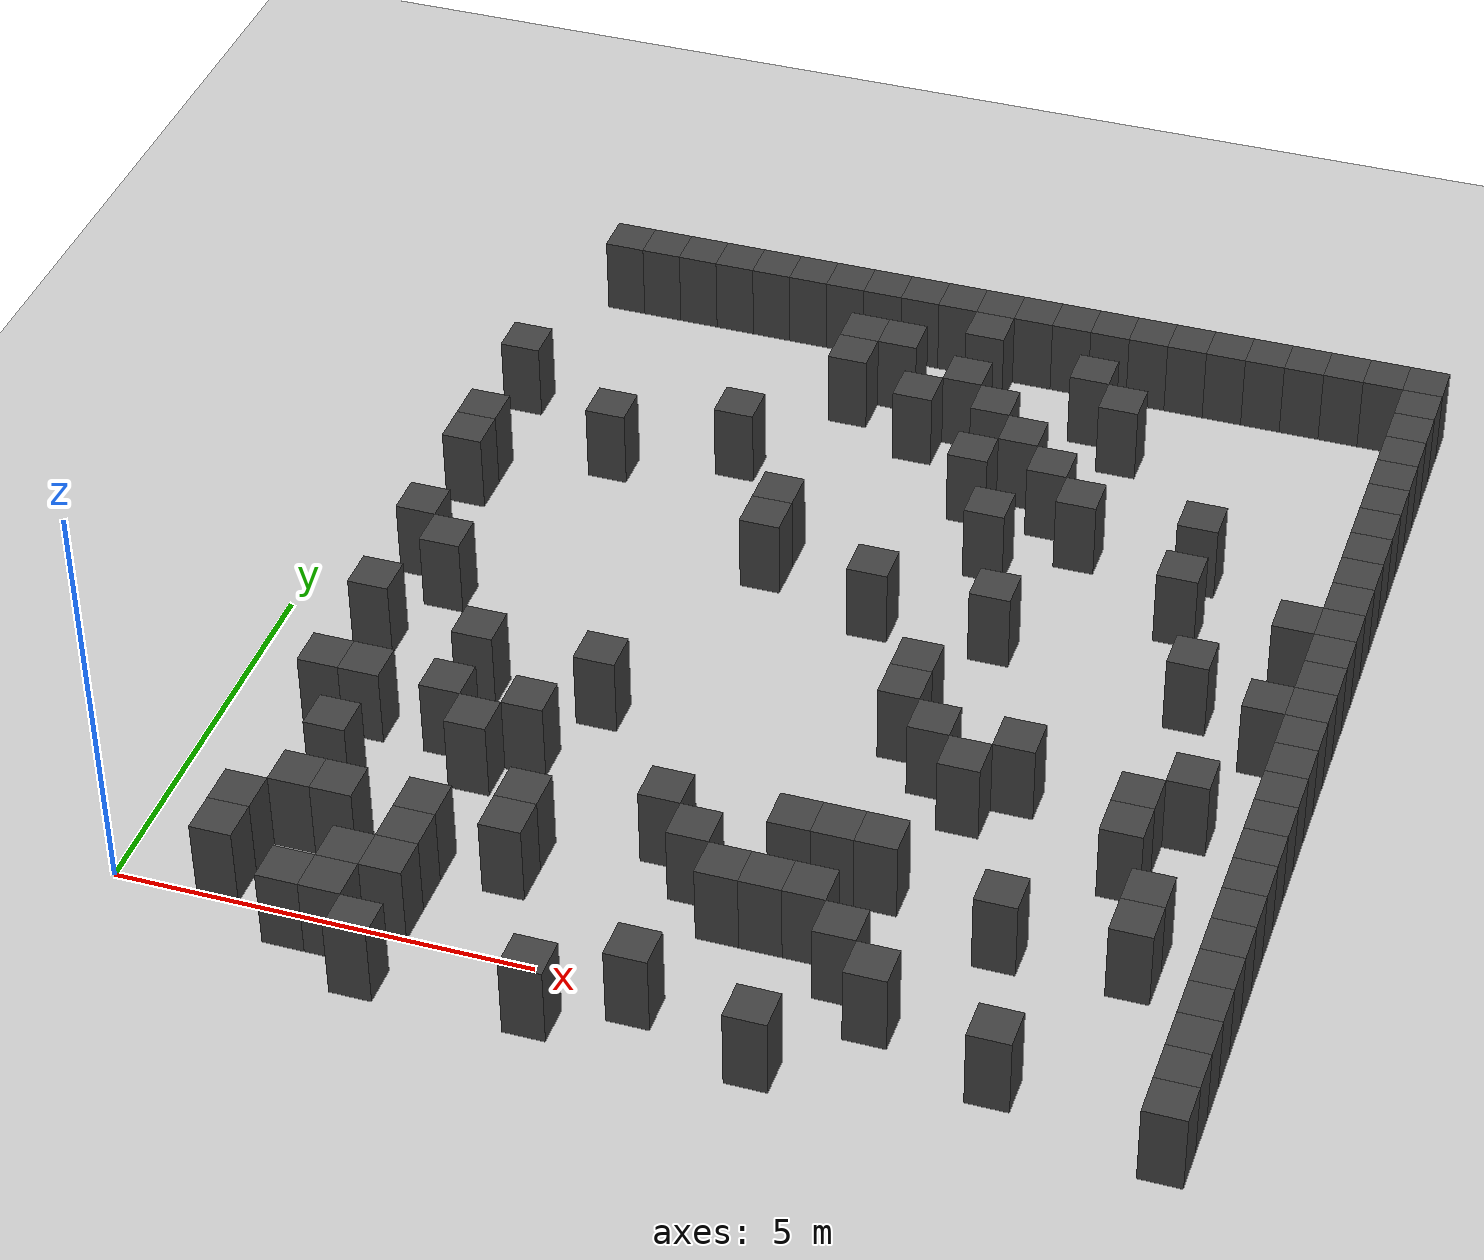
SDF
<sdf version="1.7">
 <world name="map_2522">
  <model name="ground_plane">
   <static>true</static>
   <link name="link">
    <collision name="collision">
     <geometry><plane><normal>0 0 1</normal><size>200 200</size></plane></geometry>
    </collision>
    <visual name="visual">
     <geometry><plane><normal>0 0 1</normal><size>200 200</size></plane></geometry>
     <material><ambient>0.8 0.8 0.8 1</ambient><diffuse>0.8 0.8 0.8 1</diffuse></material>
    </visual>
   </link>
  </model>
  <model name="maze_environment">
   <static>true</static>
   <link name="wall_28">
    <pose>1.750 12.250 0.500 0 0 0</pose>
    <collision name="col"><geometry><box><size>0.5 0.5 1.0</size></box></geometry></collision>
    <visual name="vis">
     <geometry><box><size>0.5 0.5 1.0</size></box></geometry>
     <material><ambient>0.15 0.15 0.15 1</ambient><diffuse>0.25 0.25 0.25 1</diffuse></material>
    </visual>
   </link>
   <link name="wall_29">
    <pose>2.250 12.250 0.500 0 0 0</pose>
    <collision name="col"><geometry><box><size>0.5 0.5 1.0</size></box></geometry></collision>
    <visual name="vis">
     <geometry><box><size>0.5 0.5 1.0</size></box></geometry>
     <material><ambient>0.15 0.15 0.15 1</ambient><diffuse>0.25 0.25 0.25 1</diffuse></material>
    </visual>
   </link>
   <link name="wall_30">
    <pose>2.750 12.250 0.500 0 0 0</pose>
    <collision name="col"><geometry><box><size>0.5 0.5 1.0</size></box></geometry></collision>
    <visual name="vis">
     <geometry><box><size>0.5 0.5 1.0</size></box></geometry>
     <material><ambient>0.15 0.15 0.15 1</ambient><diffuse>0.25 0.25 0.25 1</diffuse></material>
    </visual>
   </link>
   <link name="wall_31">
    <pose>3.250 12.250 0.500 0 0 0</pose>
    <collision name="col"><geometry><box><size>0.5 0.5 1.0</size></box></geometry></collision>
    <visual name="vis">
     <geometry><box><size>0.5 0.5 1.0</size></box></geometry>
     <material><ambient>0.15 0.15 0.15 1</ambient><diffuse>0.25 0.25 0.25 1</diffuse></material>
    </visual>
   </link>
   <link name="wall_32">
    <pose>3.750 12.250 0.500 0 0 0</pose>
    <collision name="col"><geometry><box><size>0.5 0.5 1.0</size></box></geometry></collision>
    <visual name="vis">
     <geometry><box><size>0.5 0.5 1.0</size></box></geometry>
     <material><ambient>0.15 0.15 0.15 1</ambient><diffuse>0.25 0.25 0.25 1</diffuse></material>
    </visual>
   </link>
   <link name="wall_33">
    <pose>4.250 12.250 0.500 0 0 0</pose>
    <collision name="col"><geometry><box><size>0.5 0.5 1.0</size></box></geometry></collision>
    <visual name="vis">
     <geometry><box><size>0.5 0.5 1.0</size></box></geometry>
     <material><ambient>0.15 0.15 0.15 1</ambient><diffuse>0.25 0.25 0.25 1</diffuse></material>
    </visual>
   </link>
   <link name="wall_34">
    <pose>4.750 12.250 0.500 0 0 0</pose>
    <collision name="col"><geometry><box><size>0.5 0.5 1.0</size></box></geometry></collision>
    <visual name="vis">
     <geometry><box><size>0.5 0.5 1.0</size></box></geometry>
     <material><ambient>0.15 0.15 0.15 1</ambient><diffuse>0.25 0.25 0.25 1</diffuse></material>
    </visual>
   </link>
   <link name="wall_35">
    <pose>5.250 12.250 0.500 0 0 0</pose>
    <collision name="col"><geometry><box><size>0.5 0.5 1.0</size></box></geometry></collision>
    <visual name="vis">
     <geometry><box><size>0.5 0.5 1.0</size></box></geometry>
     <material><ambient>0.15 0.15 0.15 1</ambient><diffuse>0.25 0.25 0.25 1</diffuse></material>
    </visual>
   </link>
   <link name="wall_36">
    <pose>5.750 12.250 0.500 0 0 0</pose>
    <collision name="col"><geometry><box><size>0.5 0.5 1.0</size></box></geometry></collision>
    <visual name="vis">
     <geometry><box><size>0.5 0.5 1.0</size></box></geometry>
     <material><ambient>0.15 0.15 0.15 1</ambient><diffuse>0.25 0.25 0.25 1</diffuse></material>
    </visual>
   </link>
   <link name="wall_37">
    <pose>6.250 12.250 0.500 0 0 0</pose>
    <collision name="col"><geometry><box><size>0.5 0.5 1.0</size></box></geometry></collision>
    <visual name="vis">
     <geometry><box><size>0.5 0.5 1.0</size></box></geometry>
     <material><ambient>0.15 0.15 0.15 1</ambient><diffuse>0.25 0.25 0.25 1</diffuse></material>
    </visual>
   </link>
   <link name="wall_38">
    <pose>6.750 12.250 0.500 0 0 0</pose>
    <collision name="col"><geometry><box><size>0.5 0.5 1.0</size></box></geometry></collision>
    <visual name="vis">
     <geometry><box><size>0.5 0.5 1.0</size></box></geometry>
     <material><ambient>0.15 0.15 0.15 1</ambient><diffuse>0.25 0.25 0.25 1</diffuse></material>
    </visual>
   </link>
   <link name="wall_39">
    <pose>7.250 12.250 0.500 0 0 0</pose>
    <collision name="col"><geometry><box><size>0.5 0.5 1.0</size></box></geometry></collision>
    <visual name="vis">
     <geometry><box><size>0.5 0.5 1.0</size></box></geometry>
     <material><ambient>0.15 0.15 0.15 1</ambient><diffuse>0.25 0.25 0.25 1</diffuse></material>
    </visual>
   </link>
   <link name="wall_40">
    <pose>7.750 12.250 0.500 0 0 0</pose>
    <collision name="col"><geometry><box><size>0.5 0.5 1.0</size></box></geometry></collision>
    <visual name="vis">
     <geometry><box><size>0.5 0.5 1.0</size></box></geometry>
     <material><ambient>0.15 0.15 0.15 1</ambient><diffuse>0.25 0.25 0.25 1</diffuse></material>
    </visual>
   </link>
   <link name="wall_41">
    <pose>8.250 12.250 0.500 0 0 0</pose>
    <collision name="col"><geometry><box><size>0.5 0.5 1.0</size></box></geometry></collision>
    <visual name="vis">
     <geometry><box><size>0.5 0.5 1.0</size></box></geometry>
     <material><ambient>0.15 0.15 0.15 1</ambient><diffuse>0.25 0.25 0.25 1</diffuse></material>
    </visual>
   </link>
   <link name="wall_42">
    <pose>8.750 12.250 0.500 0 0 0</pose>
    <collision name="col"><geometry><box><size>0.5 0.5 1.0</size></box></geometry></collision>
    <visual name="vis">
     <geometry><box><size>0.5 0.5 1.0</size></box></geometry>
     <material><ambient>0.15 0.15 0.15 1</ambient><diffuse>0.25 0.25 0.25 1</diffuse></material>
    </visual>
   </link>
   <link name="wall_43">
    <pose>9.250 12.250 0.500 0 0 0</pose>
    <collision name="col"><geometry><box><size>0.5 0.5 1.0</size></box></geometry></collision>
    <visual name="vis">
     <geometry><box><size>0.5 0.5 1.0</size></box></geometry>
     <material><ambient>0.15 0.15 0.15 1</ambient><diffuse>0.25 0.25 0.25 1</diffuse></material>
    </visual>
   </link>
   <link name="wall_44">
    <pose>9.750 12.250 0.500 0 0 0</pose>
    <collision name="col"><geometry><box><size>0.5 0.5 1.0</size></box></geometry></collision>
    <visual name="vis">
     <geometry><box><size>0.5 0.5 1.0</size></box></geometry>
     <material><ambient>0.15 0.15 0.15 1</ambient><diffuse>0.25 0.25 0.25 1</diffuse></material>
    </visual>
   </link>
   <link name="wall_45">
    <pose>10.250 12.250 0.500 0 0 0</pose>
    <collision name="col"><geometry><box><size>0.5 0.5 1.0</size></box></geometry></collision>
    <visual name="vis">
     <geometry><box><size>0.5 0.5 1.0</size></box></geometry>
     <material><ambient>0.15 0.15 0.15 1</ambient><diffuse>0.25 0.25 0.25 1</diffuse></material>
    </visual>
   </link>
   <link name="wall_46">
    <pose>10.750 12.250 0.500 0 0 0</pose>
    <collision name="col"><geometry><box><size>0.5 0.5 1.0</size></box></geometry></collision>
    <visual name="vis">
     <geometry><box><size>0.5 0.5 1.0</size></box></geometry>
     <material><ambient>0.15 0.15 0.15 1</ambient><diffuse>0.25 0.25 0.25 1</diffuse></material>
    </visual>
   </link>
   <link name="wall_47">
    <pose>11.250 12.250 0.500 0 0 0</pose>
    <collision name="col"><geometry><box><size>0.5 0.5 1.0</size></box></geometry></collision>
    <visual name="vis">
     <geometry><box><size>0.5 0.5 1.0</size></box></geometry>
     <material><ambient>0.15 0.15 0.15 1</ambient><diffuse>0.25 0.25 0.25 1</diffuse></material>
    </visual>
   </link>
   <link name="wall_48">
    <pose>11.750 12.250 0.500 0 0 0</pose>
    <collision name="col"><geometry><box><size>0.5 0.5 1.0</size></box></geometry></collision>
    <visual name="vis">
     <geometry><box><size>0.5 0.5 1.0</size></box></geometry>
     <material><ambient>0.15 0.15 0.15 1</ambient><diffuse>0.25 0.25 0.25 1</diffuse></material>
    </visual>
   </link>
   <link name="wall_49">
    <pose>12.250 12.250 0.500 0 0 0</pose>
    <collision name="col"><geometry><box><size>0.5 0.5 1.0</size></box></geometry></collision>
    <visual name="vis">
     <geometry><box><size>0.5 0.5 1.0</size></box></geometry>
     <material><ambient>0.15 0.15 0.15 1</ambient><diffuse>0.25 0.25 0.25 1</diffuse></material>
    </visual>
   </link>
   <link name="wall_53">
    <pose>6.750 11.750 0.500 0 0 0</pose>
    <collision name="col"><geometry><box><size>0.5 0.5 1.0</size></box></geometry></collision>
    <visual name="vis">
     <geometry><box><size>0.5 0.5 1.0</size></box></geometry>
     <material><ambient>0.15 0.15 0.15 1</ambient><diffuse>0.25 0.25 0.25 1</diffuse></material>
    </visual>
   </link>
   <link name="wall_54">
    <pose>12.250 11.750 0.500 0 0 0</pose>
    <collision name="col"><geometry><box><size>0.5 0.5 1.0</size></box></geometry></collision>
    <visual name="vis">
     <geometry><box><size>0.5 0.5 1.0</size></box></geometry>
     <material><ambient>0.15 0.15 0.15 1</ambient><diffuse>0.25 0.25 0.25 1</diffuse></material>
    </visual>
   </link>
   <link name="wall_59">
    <pose>5.250 11.250 0.500 0 0 0</pose>
    <collision name="col"><geometry><box><size>0.5 0.5 1.0</size></box></geometry></collision>
    <visual name="vis">
     <geometry><box><size>0.5 0.5 1.0</size></box></geometry>
     <material><ambient>0.15 0.15 0.15 1</ambient><diffuse>0.25 0.25 0.25 1</diffuse></material>
    </visual>
   </link>
   <link name="wall_60">
    <pose>5.750 11.250 0.500 0 0 0</pose>
    <collision name="col"><geometry><box><size>0.5 0.5 1.0</size></box></geometry></collision>
    <visual name="vis">
     <geometry><box><size>0.5 0.5 1.0</size></box></geometry>
     <material><ambient>0.15 0.15 0.15 1</ambient><diffuse>0.25 0.25 0.25 1</diffuse></material>
    </visual>
   </link>
   <link name="wall_61">
    <pose>8.250 11.250 0.500 0 0 0</pose>
    <collision name="col"><geometry><box><size>0.5 0.5 1.0</size></box></geometry></collision>
    <visual name="vis">
     <geometry><box><size>0.5 0.5 1.0</size></box></geometry>
     <material><ambient>0.15 0.15 0.15 1</ambient><diffuse>0.25 0.25 0.25 1</diffuse></material>
    </visual>
   </link>
   <link name="wall_62">
    <pose>12.250 11.250 0.500 0 0 0</pose>
    <collision name="col"><geometry><box><size>0.5 0.5 1.0</size></box></geometry></collision>
    <visual name="vis">
     <geometry><box><size>0.5 0.5 1.0</size></box></geometry>
     <material><ambient>0.15 0.15 0.15 1</ambient><diffuse>0.25 0.25 0.25 1</diffuse></material>
    </visual>
   </link>
   <link name="wall_71">
    <pose>5.250 10.750 0.500 0 0 0</pose>
    <collision name="col"><geometry><box><size>0.5 0.5 1.0</size></box></geometry></collision>
    <visual name="vis">
     <geometry><box><size>0.5 0.5 1.0</size></box></geometry>
     <material><ambient>0.15 0.15 0.15 1</ambient><diffuse>0.25 0.25 0.25 1</diffuse></material>
    </visual>
   </link>
   <link name="wall_72">
    <pose>6.750 10.750 0.500 0 0 0</pose>
    <collision name="col"><geometry><box><size>0.5 0.5 1.0</size></box></geometry></collision>
    <visual name="vis">
     <geometry><box><size>0.5 0.5 1.0</size></box></geometry>
     <material><ambient>0.15 0.15 0.15 1</ambient><diffuse>0.25 0.25 0.25 1</diffuse></material>
    </visual>
   </link>
   <link name="wall_73">
    <pose>8.750 10.750 0.500 0 0 0</pose>
    <collision name="col"><geometry><box><size>0.5 0.5 1.0</size></box></geometry></collision>
    <visual name="vis">
     <geometry><box><size>0.5 0.5 1.0</size></box></geometry>
     <material><ambient>0.15 0.15 0.15 1</ambient><diffuse>0.25 0.25 0.25 1</diffuse></material>
    </visual>
   </link>
   <link name="wall_74">
    <pose>12.250 10.750 0.500 0 0 0</pose>
    <collision name="col"><geometry><box><size>0.5 0.5 1.0</size></box></geometry></collision>
    <visual name="vis">
     <geometry><box><size>0.5 0.5 1.0</size></box></geometry>
     <material><ambient>0.15 0.15 0.15 1</ambient><diffuse>0.25 0.25 0.25 1</diffuse></material>
    </visual>
   </link>
   <link name="wall_80">
    <pose>6.250 10.250 0.500 0 0 0</pose>
    <collision name="col"><geometry><box><size>0.5 0.5 1.0</size></box></geometry></collision>
    <visual name="vis">
     <geometry><box><size>0.5 0.5 1.0</size></box></geometry>
     <material><ambient>0.15 0.15 0.15 1</ambient><diffuse>0.25 0.25 0.25 1</diffuse></material>
    </visual>
   </link>
   <link name="wall_81">
    <pose>7.250 10.250 0.500 0 0 0</pose>
    <collision name="col"><geometry><box><size>0.5 0.5 1.0</size></box></geometry></collision>
    <visual name="vis">
     <geometry><box><size>0.5 0.5 1.0</size></box></geometry>
     <material><ambient>0.15 0.15 0.15 1</ambient><diffuse>0.25 0.25 0.25 1</diffuse></material>
    </visual>
   </link>
   <link name="wall_82">
    <pose>12.250 10.250 0.500 0 0 0</pose>
    <collision name="col"><geometry><box><size>0.5 0.5 1.0</size></box></geometry></collision>
    <visual name="vis">
     <geometry><box><size>0.5 0.5 1.0</size></box></geometry>
     <material><ambient>0.15 0.15 0.15 1</ambient><diffuse>0.25 0.25 0.25 1</diffuse></material>
    </visual>
   </link>
   <link name="wall_88">
    <pose>1.250 9.750 0.500 0 0 0</pose>
    <collision name="col"><geometry><box><size>0.5 0.5 1.0</size></box></geometry></collision>
    <visual name="vis">
     <geometry><box><size>0.5 0.5 1.0</size></box></geometry>
     <material><ambient>0.15 0.15 0.15 1</ambient><diffuse>0.25 0.25 0.25 1</diffuse></material>
    </visual>
   </link>
   <link name="wall_89">
    <pose>7.750 9.750 0.500 0 0 0</pose>
    <collision name="col"><geometry><box><size>0.5 0.5 1.0</size></box></geometry></collision>
    <visual name="vis">
     <geometry><box><size>0.5 0.5 1.0</size></box></geometry>
     <material><ambient>0.15 0.15 0.15 1</ambient><diffuse>0.25 0.25 0.25 1</diffuse></material>
    </visual>
   </link>
   <link name="wall_90">
    <pose>12.250 9.750 0.500 0 0 0</pose>
    <collision name="col"><geometry><box><size>0.5 0.5 1.0</size></box></geometry></collision>
    <visual name="vis">
     <geometry><box><size>0.5 0.5 1.0</size></box></geometry>
     <material><ambient>0.15 0.15 0.15 1</ambient><diffuse>0.25 0.25 0.25 1</diffuse></material>
    </visual>
   </link>
   <link name="wall_93">
    <pose>4.250 9.250 0.500 0 0 0</pose>
    <collision name="col"><geometry><box><size>0.5 0.5 1.0</size></box></geometry></collision>
    <visual name="vis">
     <geometry><box><size>0.5 0.5 1.0</size></box></geometry>
     <material><ambient>0.15 0.15 0.15 1</ambient><diffuse>0.25 0.25 0.25 1</diffuse></material>
    </visual>
   </link>
   <link name="wall_94">
    <pose>7.250 9.250 0.500 0 0 0</pose>
    <collision name="col"><geometry><box><size>0.5 0.5 1.0</size></box></geometry></collision>
    <visual name="vis">
     <geometry><box><size>0.5 0.5 1.0</size></box></geometry>
     <material><ambient>0.15 0.15 0.15 1</ambient><diffuse>0.25 0.25 0.25 1</diffuse></material>
    </visual>
   </link>
   <link name="wall_95">
    <pose>8.250 9.250 0.500 0 0 0</pose>
    <collision name="col"><geometry><box><size>0.5 0.5 1.0</size></box></geometry></collision>
    <visual name="vis">
     <geometry><box><size>0.5 0.5 1.0</size></box></geometry>
     <material><ambient>0.15 0.15 0.15 1</ambient><diffuse>0.25 0.25 0.25 1</diffuse></material>
    </visual>
   </link>
   <link name="wall_96">
    <pose>12.250 9.250 0.500 0 0 0</pose>
    <collision name="col"><geometry><box><size>0.5 0.5 1.0</size></box></geometry></collision>
    <visual name="vis">
     <geometry><box><size>0.5 0.5 1.0</size></box></geometry>
     <material><ambient>0.15 0.15 0.15 1</ambient><diffuse>0.25 0.25 0.25 1</diffuse></material>
    </visual>
   </link>
   <link name="wall_100">
    <pose>2.750 8.750 0.500 0 0 0</pose>
    <collision name="col"><geometry><box><size>0.5 0.5 1.0</size></box></geometry></collision>
    <visual name="vis">
     <geometry><box><size>0.5 0.5 1.0</size></box></geometry>
     <material><ambient>0.15 0.15 0.15 1</ambient><diffuse>0.25 0.25 0.25 1</diffuse></material>
    </visual>
   </link>
   <link name="wall_101">
    <pose>8.750 8.750 0.500 0 0 0</pose>
    <collision name="col"><geometry><box><size>0.5 0.5 1.0</size></box></geometry></collision>
    <visual name="vis">
     <geometry><box><size>0.5 0.5 1.0</size></box></geometry>
     <material><ambient>0.15 0.15 0.15 1</ambient><diffuse>0.25 0.25 0.25 1</diffuse></material>
    </visual>
   </link>
   <link name="wall_102">
    <pose>10.250 8.750 0.500 0 0 0</pose>
    <collision name="col"><geometry><box><size>0.5 0.5 1.0</size></box></geometry></collision>
    <visual name="vis">
     <geometry><box><size>0.5 0.5 1.0</size></box></geometry>
     <material><ambient>0.15 0.15 0.15 1</ambient><diffuse>0.25 0.25 0.25 1</diffuse></material>
    </visual>
   </link>
   <link name="wall_103">
    <pose>12.250 8.750 0.500 0 0 0</pose>
    <collision name="col"><geometry><box><size>0.5 0.5 1.0</size></box></geometry></collision>
    <visual name="vis">
     <geometry><box><size>0.5 0.5 1.0</size></box></geometry>
     <material><ambient>0.15 0.15 0.15 1</ambient><diffuse>0.25 0.25 0.25 1</diffuse></material>
    </visual>
   </link>
   <link name="wall_106">
    <pose>1.250 8.250 0.500 0 0 0</pose>
    <collision name="col"><geometry><box><size>0.5 0.5 1.0</size></box></geometry></collision>
    <visual name="vis">
     <geometry><box><size>0.5 0.5 1.0</size></box></geometry>
     <material><ambient>0.15 0.15 0.15 1</ambient><diffuse>0.25 0.25 0.25 1</diffuse></material>
    </visual>
   </link>
   <link name="wall_107">
    <pose>7.750 8.250 0.500 0 0 0</pose>
    <collision name="col"><geometry><box><size>0.5 0.5 1.0</size></box></geometry></collision>
    <visual name="vis">
     <geometry><box><size>0.5 0.5 1.0</size></box></geometry>
     <material><ambient>0.15 0.15 0.15 1</ambient><diffuse>0.25 0.25 0.25 1</diffuse></material>
    </visual>
   </link>
   <link name="wall_108">
    <pose>12.250 8.250 0.500 0 0 0</pose>
    <collision name="col"><geometry><box><size>0.5 0.5 1.0</size></box></geometry></collision>
    <visual name="vis">
     <geometry><box><size>0.5 0.5 1.0</size></box></geometry>
     <material><ambient>0.15 0.15 0.15 1</ambient><diffuse>0.25 0.25 0.25 1</diffuse></material>
    </visual>
   </link>
   <link name="wall_111">
    <pose>1.250 7.750 0.500 0 0 0</pose>
    <collision name="col"><geometry><box><size>0.5 0.5 1.0</size></box></geometry></collision>
    <visual name="vis">
     <geometry><box><size>0.5 0.5 1.0</size></box></geometry>
     <material><ambient>0.15 0.15 0.15 1</ambient><diffuse>0.25 0.25 0.25 1</diffuse></material>
    </visual>
   </link>
   <link name="wall_112">
    <pose>5.250 7.750 0.500 0 0 0</pose>
    <collision name="col"><geometry><box><size>0.5 0.5 1.0</size></box></geometry></collision>
    <visual name="vis">
     <geometry><box><size>0.5 0.5 1.0</size></box></geometry>
     <material><ambient>0.15 0.15 0.15 1</ambient><diffuse>0.25 0.25 0.25 1</diffuse></material>
    </visual>
   </link>
   <link name="wall_113">
    <pose>10.250 7.750 0.500 0 0 0</pose>
    <collision name="col"><geometry><box><size>0.5 0.5 1.0</size></box></geometry></collision>
    <visual name="vis">
     <geometry><box><size>0.5 0.5 1.0</size></box></geometry>
     <material><ambient>0.15 0.15 0.15 1</ambient><diffuse>0.25 0.25 0.25 1</diffuse></material>
    </visual>
   </link>
   <link name="wall_114">
    <pose>12.250 7.750 0.500 0 0 0</pose>
    <collision name="col"><geometry><box><size>0.5 0.5 1.0</size></box></geometry></collision>
    <visual name="vis">
     <geometry><box><size>0.5 0.5 1.0</size></box></geometry>
     <material><ambient>0.15 0.15 0.15 1</ambient><diffuse>0.25 0.25 0.25 1</diffuse></material>
    </visual>
   </link>
   <link name="wall_120">
    <pose>5.250 7.250 0.500 0 0 0</pose>
    <collision name="col"><geometry><box><size>0.5 0.5 1.0</size></box></geometry></collision>
    <visual name="vis">
     <geometry><box><size>0.5 0.5 1.0</size></box></geometry>
     <material><ambient>0.15 0.15 0.15 1</ambient><diffuse>0.25 0.25 0.25 1</diffuse></material>
    </visual>
   </link>
   <link name="wall_121">
    <pose>11.750 7.250 0.500 0 0 0</pose>
    <collision name="col"><geometry><box><size>0.5 0.5 1.0</size></box></geometry></collision>
    <visual name="vis">
     <geometry><box><size>0.5 0.5 1.0</size></box></geometry>
     <material><ambient>0.15 0.15 0.15 1</ambient><diffuse>0.25 0.25 0.25 1</diffuse></material>
    </visual>
   </link>
   <link name="wall_122">
    <pose>12.250 7.250 0.500 0 0 0</pose>
    <collision name="col"><geometry><box><size>0.5 0.5 1.0</size></box></geometry></collision>
    <visual name="vis">
     <geometry><box><size>0.5 0.5 1.0</size></box></geometry>
     <material><ambient>0.15 0.15 0.15 1</ambient><diffuse>0.25 0.25 0.25 1</diffuse></material>
    </visual>
   </link>
   <link name="wall_126">
    <pose>6.750 6.750 0.500 0 0 0</pose>
    <collision name="col"><geometry><box><size>0.5 0.5 1.0</size></box></geometry></collision>
    <visual name="vis">
     <geometry><box><size>0.5 0.5 1.0</size></box></geometry>
     <material><ambient>0.15 0.15 0.15 1</ambient><diffuse>0.25 0.25 0.25 1</diffuse></material>
    </visual>
   </link>
   <link name="wall_127">
    <pose>8.250 6.750 0.500 0 0 0</pose>
    <collision name="col"><geometry><box><size>0.5 0.5 1.0</size></box></geometry></collision>
    <visual name="vis">
     <geometry><box><size>0.5 0.5 1.0</size></box></geometry>
     <material><ambient>0.15 0.15 0.15 1</ambient><diffuse>0.25 0.25 0.25 1</diffuse></material>
    </visual>
   </link>
   <link name="wall_128">
    <pose>12.250 6.750 0.500 0 0 0</pose>
    <collision name="col"><geometry><box><size>0.5 0.5 1.0</size></box></geometry></collision>
    <visual name="vis">
     <geometry><box><size>0.5 0.5 1.0</size></box></geometry>
     <material><ambient>0.15 0.15 0.15 1</ambient><diffuse>0.25 0.25 0.25 1</diffuse></material>
    </visual>
   </link>
   <link name="wall_132">
    <pose>1.250 6.250 0.500 0 0 0</pose>
    <collision name="col"><geometry><box><size>0.5 0.5 1.0</size></box></geometry></collision>
    <visual name="vis">
     <geometry><box><size>0.5 0.5 1.0</size></box></geometry>
     <material><ambient>0.15 0.15 0.15 1</ambient><diffuse>0.25 0.25 0.25 1</diffuse></material>
    </visual>
   </link>
   <link name="wall_133">
    <pose>10.750 6.250 0.500 0 0 0</pose>
    <collision name="col"><geometry><box><size>0.5 0.5 1.0</size></box></geometry></collision>
    <visual name="vis">
     <geometry><box><size>0.5 0.5 1.0</size></box></geometry>
     <material><ambient>0.15 0.15 0.15 1</ambient><diffuse>0.25 0.25 0.25 1</diffuse></material>
    </visual>
   </link>
   <link name="wall_134">
    <pose>12.250 6.250 0.500 0 0 0</pose>
    <collision name="col"><geometry><box><size>0.5 0.5 1.0</size></box></geometry></collision>
    <visual name="vis">
     <geometry><box><size>0.5 0.5 1.0</size></box></geometry>
     <material><ambient>0.15 0.15 0.15 1</ambient><diffuse>0.25 0.25 0.25 1</diffuse></material>
    </visual>
   </link>
   <link name="wall_139">
    <pose>1.750 5.750 0.500 0 0 0</pose>
    <collision name="col"><geometry><box><size>0.5 0.5 1.0</size></box></geometry></collision>
    <visual name="vis">
     <geometry><box><size>0.5 0.5 1.0</size></box></geometry>
     <material><ambient>0.15 0.15 0.15 1</ambient><diffuse>0.25 0.25 0.25 1</diffuse></material>
    </visual>
   </link>
   <link name="wall_140">
    <pose>11.750 5.750 0.500 0 0 0</pose>
    <collision name="col"><geometry><box><size>0.5 0.5 1.0</size></box></geometry></collision>
    <visual name="vis">
     <geometry><box><size>0.5 0.5 1.0</size></box></geometry>
     <material><ambient>0.15 0.15 0.15 1</ambient><diffuse>0.25 0.25 0.25 1</diffuse></material>
    </visual>
   </link>
   <link name="wall_141">
    <pose>12.250 5.750 0.500 0 0 0</pose>
    <collision name="col"><geometry><box><size>0.5 0.5 1.0</size></box></geometry></collision>
    <visual name="vis">
     <geometry><box><size>0.5 0.5 1.0</size></box></geometry>
     <material><ambient>0.15 0.15 0.15 1</ambient><diffuse>0.25 0.25 0.25 1</diffuse></material>
    </visual>
   </link>
   <link name="wall_146">
    <pose>7.750 5.250 0.500 0 0 0</pose>
    <collision name="col"><geometry><box><size>0.5 0.5 1.0</size></box></geometry></collision>
    <visual name="vis">
     <geometry><box><size>0.5 0.5 1.0</size></box></geometry>
     <material><ambient>0.15 0.15 0.15 1</ambient><diffuse>0.25 0.25 0.25 1</diffuse></material>
    </visual>
   </link>
   <link name="wall_147">
    <pose>12.250 5.250 0.500 0 0 0</pose>
    <collision name="col"><geometry><box><size>0.5 0.5 1.0</size></box></geometry></collision>
    <visual name="vis">
     <geometry><box><size>0.5 0.5 1.0</size></box></geometry>
     <material><ambient>0.15 0.15 0.15 1</ambient><diffuse>0.25 0.25 0.25 1</diffuse></material>
    </visual>
   </link>
   <link name="wall_153">
    <pose>1.250 4.750 0.500 0 0 0</pose>
    <collision name="col"><geometry><box><size>0.5 0.5 1.0</size></box></geometry></collision>
    <visual name="vis">
     <geometry><box><size>0.5 0.5 1.0</size></box></geometry>
     <material><ambient>0.15 0.15 0.15 1</ambient><diffuse>0.25 0.25 0.25 1</diffuse></material>
    </visual>
   </link>
   <link name="wall_154">
    <pose>7.750 4.750 0.500 0 0 0</pose>
    <collision name="col"><geometry><box><size>0.5 0.5 1.0</size></box></geometry></collision>
    <visual name="vis">
     <geometry><box><size>0.5 0.5 1.0</size></box></geometry>
     <material><ambient>0.15 0.15 0.15 1</ambient><diffuse>0.25 0.25 0.25 1</diffuse></material>
    </visual>
   </link>
   <link name="wall_155">
    <pose>12.250 4.750 0.500 0 0 0</pose>
    <collision name="col"><geometry><box><size>0.5 0.5 1.0</size></box></geometry></collision>
    <visual name="vis">
     <geometry><box><size>0.5 0.5 1.0</size></box></geometry>
     <material><ambient>0.15 0.15 0.15 1</ambient><diffuse>0.25 0.25 0.25 1</diffuse></material>
    </visual>
   </link>
   <link name="wall_161">
    <pose>2.750 4.250 0.500 0 0 0</pose>
    <collision name="col"><geometry><box><size>0.5 0.5 1.0</size></box></geometry></collision>
    <visual name="vis">
     <geometry><box><size>0.5 0.5 1.0</size></box></geometry>
     <material><ambient>0.15 0.15 0.15 1</ambient><diffuse>0.25 0.25 0.25 1</diffuse></material>
    </visual>
   </link>
   <link name="wall_162">
    <pose>4.250 4.250 0.500 0 0 0</pose>
    <collision name="col"><geometry><box><size>0.5 0.5 1.0</size></box></geometry></collision>
    <visual name="vis">
     <geometry><box><size>0.5 0.5 1.0</size></box></geometry>
     <material><ambient>0.15 0.15 0.15 1</ambient><diffuse>0.25 0.25 0.25 1</diffuse></material>
    </visual>
   </link>
   <link name="wall_163">
    <pose>8.250 4.250 0.500 0 0 0</pose>
    <collision name="col"><geometry><box><size>0.5 0.5 1.0</size></box></geometry></collision>
    <visual name="vis">
     <geometry><box><size>0.5 0.5 1.0</size></box></geometry>
     <material><ambient>0.15 0.15 0.15 1</ambient><diffuse>0.25 0.25 0.25 1</diffuse></material>
    </visual>
   </link>
   <link name="wall_164">
    <pose>9.250 4.250 0.500 0 0 0</pose>
    <collision name="col"><geometry><box><size>0.5 0.5 1.0</size></box></geometry></collision>
    <visual name="vis">
     <geometry><box><size>0.5 0.5 1.0</size></box></geometry>
     <material><ambient>0.15 0.15 0.15 1</ambient><diffuse>0.25 0.25 0.25 1</diffuse></material>
    </visual>
   </link>
   <link name="wall_165">
    <pose>11.250 4.250 0.500 0 0 0</pose>
    <collision name="col"><geometry><box><size>0.5 0.5 1.0</size></box></geometry></collision>
    <visual name="vis">
     <geometry><box><size>0.5 0.5 1.0</size></box></geometry>
     <material><ambient>0.15 0.15 0.15 1</ambient><diffuse>0.25 0.25 0.25 1</diffuse></material>
    </visual>
   </link>
   <link name="wall_166">
    <pose>12.250 4.250 0.500 0 0 0</pose>
    <collision name="col"><geometry><box><size>0.5 0.5 1.0</size></box></geometry></collision>
    <visual name="vis">
     <geometry><box><size>0.5 0.5 1.0</size></box></geometry>
     <material><ambient>0.15 0.15 0.15 1</ambient><diffuse>0.25 0.25 0.25 1</diffuse></material>
    </visual>
   </link>
   <link name="wall_168">
    <pose>8.750 3.750 0.500 0 0 0</pose>
    <collision name="col"><geometry><box><size>0.5 0.5 1.0</size></box></geometry></collision>
    <visual name="vis">
     <geometry><box><size>0.5 0.5 1.0</size></box></geometry>
     <material><ambient>0.15 0.15 0.15 1</ambient><diffuse>0.25 0.25 0.25 1</diffuse></material>
    </visual>
   </link>
   <link name="wall_169">
    <pose>10.750 3.750 0.500 0 0 0</pose>
    <collision name="col"><geometry><box><size>0.5 0.5 1.0</size></box></geometry></collision>
    <visual name="vis">
     <geometry><box><size>0.5 0.5 1.0</size></box></geometry>
     <material><ambient>0.15 0.15 0.15 1</ambient><diffuse>0.25 0.25 0.25 1</diffuse></material>
    </visual>
   </link>
   <link name="wall_170">
    <pose>12.250 3.750 0.500 0 0 0</pose>
    <collision name="col"><geometry><box><size>0.5 0.5 1.0</size></box></geometry></collision>
    <visual name="vis">
     <geometry><box><size>0.5 0.5 1.0</size></box></geometry>
     <material><ambient>0.15 0.15 0.15 1</ambient><diffuse>0.25 0.25 0.25 1</diffuse></material>
    </visual>
   </link>
   <link name="wall_174">
    <pose>1.250 3.250 0.500 0 0 0</pose>
    <collision name="col"><geometry><box><size>0.5 0.5 1.0</size></box></geometry></collision>
    <visual name="vis">
     <geometry><box><size>0.5 0.5 1.0</size></box></geometry>
     <material><ambient>0.15 0.15 0.15 1</ambient><diffuse>0.25 0.25 0.25 1</diffuse></material>
    </visual>
   </link>
   <link name="wall_175">
    <pose>1.750 3.250 0.500 0 0 0</pose>
    <collision name="col"><geometry><box><size>0.5 0.5 1.0</size></box></geometry></collision>
    <visual name="vis">
     <geometry><box><size>0.5 0.5 1.0</size></box></geometry>
     <material><ambient>0.15 0.15 0.15 1</ambient><diffuse>0.25 0.25 0.25 1</diffuse></material>
    </visual>
   </link>
   <link name="wall_176">
    <pose>2.750 3.250 0.500 0 0 0</pose>
    <collision name="col"><geometry><box><size>0.5 0.5 1.0</size></box></geometry></collision>
    <visual name="vis">
     <geometry><box><size>0.5 0.5 1.0</size></box></geometry>
     <material><ambient>0.15 0.15 0.15 1</ambient><diffuse>0.25 0.25 0.25 1</diffuse></material>
    </visual>
   </link>
   <link name="wall_177">
    <pose>3.750 3.250 0.500 0 0 0</pose>
    <collision name="col"><geometry><box><size>0.5 0.5 1.0</size></box></geometry></collision>
    <visual name="vis">
     <geometry><box><size>0.5 0.5 1.0</size></box></geometry>
     <material><ambient>0.15 0.15 0.15 1</ambient><diffuse>0.25 0.25 0.25 1</diffuse></material>
    </visual>
   </link>
   <link name="wall_178">
    <pose>10.750 3.250 0.500 0 0 0</pose>
    <collision name="col"><geometry><box><size>0.5 0.5 1.0</size></box></geometry></collision>
    <visual name="vis">
     <geometry><box><size>0.5 0.5 1.0</size></box></geometry>
     <material><ambient>0.15 0.15 0.15 1</ambient><diffuse>0.25 0.25 0.25 1</diffuse></material>
    </visual>
   </link>
   <link name="wall_179">
    <pose>12.250 3.250 0.500 0 0 0</pose>
    <collision name="col"><geometry><box><size>0.5 0.5 1.0</size></box></geometry></collision>
    <visual name="vis">
     <geometry><box><size>0.5 0.5 1.0</size></box></geometry>
     <material><ambient>0.15 0.15 0.15 1</ambient><diffuse>0.25 0.25 0.25 1</diffuse></material>
    </visual>
   </link>
   <link name="wall_184">
    <pose>3.250 2.750 0.500 0 0 0</pose>
    <collision name="col"><geometry><box><size>0.5 0.5 1.0</size></box></geometry></collision>
    <visual name="vis">
     <geometry><box><size>0.5 0.5 1.0</size></box></geometry>
     <material><ambient>0.15 0.15 0.15 1</ambient><diffuse>0.25 0.25 0.25 1</diffuse></material>
    </visual>
   </link>
   <link name="wall_185">
    <pose>12.250 2.750 0.500 0 0 0</pose>
    <collision name="col"><geometry><box><size>0.5 0.5 1.0</size></box></geometry></collision>
    <visual name="vis">
     <geometry><box><size>0.5 0.5 1.0</size></box></geometry>
     <material><ambient>0.15 0.15 0.15 1</ambient><diffuse>0.25 0.25 0.25 1</diffuse></material>
    </visual>
   </link>
   <link name="wall_191">
    <pose>1.750 2.250 0.500 0 0 0</pose>
    <collision name="col"><geometry><box><size>0.5 0.5 1.0</size></box></geometry></collision>
    <visual name="vis">
     <geometry><box><size>0.5 0.5 1.0</size></box></geometry>
     <material><ambient>0.15 0.15 0.15 1</ambient><diffuse>0.25 0.25 0.25 1</diffuse></material>
    </visual>
   </link>
   <link name="wall_192">
    <pose>5.750 2.250 0.500 0 0 0</pose>
    <collision name="col"><geometry><box><size>0.5 0.5 1.0</size></box></geometry></collision>
    <visual name="vis">
     <geometry><box><size>0.5 0.5 1.0</size></box></geometry>
     <material><ambient>0.15 0.15 0.15 1</ambient><diffuse>0.25 0.25 0.25 1</diffuse></material>
    </visual>
   </link>
   <link name="wall_193">
    <pose>7.250 2.250 0.500 0 0 0</pose>
    <collision name="col"><geometry><box><size>0.5 0.5 1.0</size></box></geometry></collision>
    <visual name="vis">
     <geometry><box><size>0.5 0.5 1.0</size></box></geometry>
     <material><ambient>0.15 0.15 0.15 1</ambient><diffuse>0.25 0.25 0.25 1</diffuse></material>
    </visual>
   </link>
   <link name="wall_194">
    <pose>7.750 2.250 0.500 0 0 0</pose>
    <collision name="col"><geometry><box><size>0.5 0.5 1.0</size></box></geometry></collision>
    <visual name="vis">
     <geometry><box><size>0.5 0.5 1.0</size></box></geometry>
     <material><ambient>0.15 0.15 0.15 1</ambient><diffuse>0.25 0.25 0.25 1</diffuse></material>
    </visual>
   </link>
   <link name="wall_195">
    <pose>8.250 2.250 0.500 0 0 0</pose>
    <collision name="col"><geometry><box><size>0.5 0.5 1.0</size></box></geometry></collision>
    <visual name="vis">
     <geometry><box><size>0.5 0.5 1.0</size></box></geometry>
     <material><ambient>0.15 0.15 0.15 1</ambient><diffuse>0.25 0.25 0.25 1</diffuse></material>
    </visual>
   </link>
   <link name="wall_196">
    <pose>11.250 2.250 0.500 0 0 0</pose>
    <collision name="col"><geometry><box><size>0.5 0.5 1.0</size></box></geometry></collision>
    <visual name="vis">
     <geometry><box><size>0.5 0.5 1.0</size></box></geometry>
     <material><ambient>0.15 0.15 0.15 1</ambient><diffuse>0.25 0.25 0.25 1</diffuse></material>
    </visual>
   </link>
   <link name="wall_197">
    <pose>12.250 2.250 0.500 0 0 0</pose>
    <collision name="col"><geometry><box><size>0.5 0.5 1.0</size></box></geometry></collision>
    <visual name="vis">
     <geometry><box><size>0.5 0.5 1.0</size></box></geometry>
     <material><ambient>0.15 0.15 0.15 1</ambient><diffuse>0.25 0.25 0.25 1</diffuse></material>
    </visual>
   </link>
   <link name="wall_203">
    <pose>4.250 1.750 0.500 0 0 0</pose>
    <collision name="col"><geometry><box><size>0.5 0.5 1.0</size></box></geometry></collision>
    <visual name="vis">
     <geometry><box><size>0.5 0.5 1.0</size></box></geometry>
     <material><ambient>0.15 0.15 0.15 1</ambient><diffuse>0.25 0.25 0.25 1</diffuse></material>
    </visual>
   </link>
   <link name="wall_204">
    <pose>6.250 1.750 0.500 0 0 0</pose>
    <collision name="col"><geometry><box><size>0.5 0.5 1.0</size></box></geometry></collision>
    <visual name="vis">
     <geometry><box><size>0.5 0.5 1.0</size></box></geometry>
     <material><ambient>0.15 0.15 0.15 1</ambient><diffuse>0.25 0.25 0.25 1</diffuse></material>
    </visual>
   </link>
   <link name="wall_205">
    <pose>9.750 1.750 0.500 0 0 0</pose>
    <collision name="col"><geometry><box><size>0.5 0.5 1.0</size></box></geometry></collision>
    <visual name="vis">
     <geometry><box><size>0.5 0.5 1.0</size></box></geometry>
     <material><ambient>0.15 0.15 0.15 1</ambient><diffuse>0.25 0.25 0.25 1</diffuse></material>
    </visual>
   </link>
   <link name="wall_206">
    <pose>11.250 1.750 0.500 0 0 0</pose>
    <collision name="col"><geometry><box><size>0.5 0.5 1.0</size></box></geometry></collision>
    <visual name="vis">
     <geometry><box><size>0.5 0.5 1.0</size></box></geometry>
     <material><ambient>0.15 0.15 0.15 1</ambient><diffuse>0.25 0.25 0.25 1</diffuse></material>
    </visual>
   </link>
   <link name="wall_207">
    <pose>12.250 1.750 0.500 0 0 0</pose>
    <collision name="col"><geometry><box><size>0.5 0.5 1.0</size></box></geometry></collision>
    <visual name="vis">
     <geometry><box><size>0.5 0.5 1.0</size></box></geometry>
     <material><ambient>0.15 0.15 0.15 1</ambient><diffuse>0.25 0.25 0.25 1</diffuse></material>
    </visual>
   </link>
   <link name="wall_213">
    <pose>1.750 1.250 0.500 0 0 0</pose>
    <collision name="col"><geometry><box><size>0.5 0.5 1.0</size></box></geometry></collision>
    <visual name="vis">
     <geometry><box><size>0.5 0.5 1.0</size></box></geometry>
     <material><ambient>0.15 0.15 0.15 1</ambient><diffuse>0.25 0.25 0.25 1</diffuse></material>
    </visual>
   </link>
   <link name="wall_214">
    <pose>2.250 1.250 0.500 0 0 0</pose>
    <collision name="col"><geometry><box><size>0.5 0.5 1.0</size></box></geometry></collision>
    <visual name="vis">
     <geometry><box><size>0.5 0.5 1.0</size></box></geometry>
     <material><ambient>0.15 0.15 0.15 1</ambient><diffuse>0.25 0.25 0.25 1</diffuse></material>
    </visual>
   </link>
   <link name="wall_215">
    <pose>3.250 1.250 0.500 0 0 0</pose>
    <collision name="col"><geometry><box><size>0.5 0.5 1.0</size></box></geometry></collision>
    <visual name="vis">
     <geometry><box><size>0.5 0.5 1.0</size></box></geometry>
     <material><ambient>0.15 0.15 0.15 1</ambient><diffuse>0.25 0.25 0.25 1</diffuse></material>
    </visual>
   </link>
   <link name="wall_216">
    <pose>4.250 1.250 0.500 0 0 0</pose>
    <collision name="col"><geometry><box><size>0.5 0.5 1.0</size></box></geometry></collision>
    <visual name="vis">
     <geometry><box><size>0.5 0.5 1.0</size></box></geometry>
     <material><ambient>0.15 0.15 0.15 1</ambient><diffuse>0.25 0.25 0.25 1</diffuse></material>
    </visual>
   </link>
   <link name="wall_217">
    <pose>6.750 1.250 0.500 0 0 0</pose>
    <collision name="col"><geometry><box><size>0.5 0.5 1.0</size></box></geometry></collision>
    <visual name="vis">
     <geometry><box><size>0.5 0.5 1.0</size></box></geometry>
     <material><ambient>0.15 0.15 0.15 1</ambient><diffuse>0.25 0.25 0.25 1</diffuse></material>
    </visual>
   </link>
   <link name="wall_218">
    <pose>7.250 1.250 0.500 0 0 0</pose>
    <collision name="col"><geometry><box><size>0.5 0.5 1.0</size></box></geometry></collision>
    <visual name="vis">
     <geometry><box><size>0.5 0.5 1.0</size></box></geometry>
     <material><ambient>0.15 0.15 0.15 1</ambient><diffuse>0.25 0.25 0.25 1</diffuse></material>
    </visual>
   </link>
   <link name="wall_219">
    <pose>7.750 1.250 0.500 0 0 0</pose>
    <collision name="col"><geometry><box><size>0.5 0.5 1.0</size></box></geometry></collision>
    <visual name="vis">
     <geometry><box><size>0.5 0.5 1.0</size></box></geometry>
     <material><ambient>0.15 0.15 0.15 1</ambient><diffuse>0.25 0.25 0.25 1</diffuse></material>
    </visual>
   </link>
   <link name="wall_220">
    <pose>12.250 1.250 0.500 0 0 0</pose>
    <collision name="col"><geometry><box><size>0.5 0.5 1.0</size></box></geometry></collision>
    <visual name="vis">
     <geometry><box><size>0.5 0.5 1.0</size></box></geometry>
     <material><ambient>0.15 0.15 0.15 1</ambient><diffuse>0.25 0.25 0.25 1</diffuse></material>
    </visual>
   </link>
   <link name="wall_223">
    <pose>1.250 0.750 0.500 0 0 0</pose>
    <collision name="col"><geometry><box><size>0.5 0.5 1.0</size></box></geometry></collision>
    <visual name="vis">
     <geometry><box><size>0.5 0.5 1.0</size></box></geometry>
     <material><ambient>0.15 0.15 0.15 1</ambient><diffuse>0.25 0.25 0.25 1</diffuse></material>
    </visual>
   </link>
   <link name="wall_224">
    <pose>3.250 0.750 0.500 0 0 0</pose>
    <collision name="col"><geometry><box><size>0.5 0.5 1.0</size></box></geometry></collision>
    <visual name="vis">
     <geometry><box><size>0.5 0.5 1.0</size></box></geometry>
     <material><ambient>0.15 0.15 0.15 1</ambient><diffuse>0.25 0.25 0.25 1</diffuse></material>
    </visual>
   </link>
   <link name="wall_225">
    <pose>8.250 0.750 0.500 0 0 0</pose>
    <collision name="col"><geometry><box><size>0.5 0.5 1.0</size></box></geometry></collision>
    <visual name="vis">
     <geometry><box><size>0.5 0.5 1.0</size></box></geometry>
     <material><ambient>0.15 0.15 0.15 1</ambient><diffuse>0.25 0.25 0.25 1</diffuse></material>
    </visual>
   </link>
   <link name="wall_226">
    <pose>12.250 0.750 0.500 0 0 0</pose>
    <collision name="col"><geometry><box><size>0.5 0.5 1.0</size></box></geometry></collision>
    <visual name="vis">
     <geometry><box><size>0.5 0.5 1.0</size></box></geometry>
     <material><ambient>0.15 0.15 0.15 1</ambient><diffuse>0.25 0.25 0.25 1</diffuse></material>
    </visual>
   </link>
   <link name="wall_229">
    <pose>1.250 0.250 0.500 0 0 0</pose>
    <collision name="col"><geometry><box><size>0.5 0.5 1.0</size></box></geometry></collision>
    <visual name="vis">
     <geometry><box><size>0.5 0.5 1.0</size></box></geometry>
     <material><ambient>0.15 0.15 0.15 1</ambient><diffuse>0.25 0.25 0.25 1</diffuse></material>
    </visual>
   </link>
   <link name="wall_230">
    <pose>2.750 0.250 0.500 0 0 0</pose>
    <collision name="col"><geometry><box><size>0.5 0.5 1.0</size></box></geometry></collision>
    <visual name="vis">
     <geometry><box><size>0.5 0.5 1.0</size></box></geometry>
     <material><ambient>0.15 0.15 0.15 1</ambient><diffuse>0.25 0.25 0.25 1</diffuse></material>
    </visual>
   </link>
   <link name="wall_231">
    <pose>3.250 0.250 0.500 0 0 0</pose>
    <collision name="col"><geometry><box><size>0.5 0.5 1.0</size></box></geometry></collision>
    <visual name="vis">
     <geometry><box><size>0.5 0.5 1.0</size></box></geometry>
     <material><ambient>0.15 0.15 0.15 1</ambient><diffuse>0.25 0.25 0.25 1</diffuse></material>
    </visual>
   </link>
   <link name="wall_232">
    <pose>8.750 0.250 0.500 0 0 0</pose>
    <collision name="col"><geometry><box><size>0.5 0.5 1.0</size></box></geometry></collision>
    <visual name="vis">
     <geometry><box><size>0.5 0.5 1.0</size></box></geometry>
     <material><ambient>0.15 0.15 0.15 1</ambient><diffuse>0.25 0.25 0.25 1</diffuse></material>
    </visual>
   </link>
   <link name="wall_233">
    <pose>12.250 0.250 0.500 0 0 0</pose>
    <collision name="col"><geometry><box><size>0.5 0.5 1.0</size></box></geometry></collision>
    <visual name="vis">
     <geometry><box><size>0.5 0.5 1.0</size></box></geometry>
     <material><ambient>0.15 0.15 0.15 1</ambient><diffuse>0.25 0.25 0.25 1</diffuse></material>
    </visual>
   </link>
   <link name="wall_236">
    <pose>2.250 -0.250 0.500 0 0 0</pose>
    <collision name="col"><geometry><box><size>0.5 0.5 1.0</size></box></geometry></collision>
    <visual name="vis">
     <geometry><box><size>0.5 0.5 1.0</size></box></geometry>
     <material><ambient>0.15 0.15 0.15 1</ambient><diffuse>0.25 0.25 0.25 1</diffuse></material>
    </visual>
   </link>
   <link name="wall_237">
    <pose>2.750 -0.250 0.500 0 0 0</pose>
    <collision name="col"><geometry><box><size>0.5 0.5 1.0</size></box></geometry></collision>
    <visual name="vis">
     <geometry><box><size>0.5 0.5 1.0</size></box></geometry>
     <material><ambient>0.15 0.15 0.15 1</ambient><diffuse>0.25 0.25 0.25 1</diffuse></material>
    </visual>
   </link>
   <link name="wall_238">
    <pose>6.250 -0.250 0.500 0 0 0</pose>
    <collision name="col"><geometry><box><size>0.5 0.5 1.0</size></box></geometry></collision>
    <visual name="vis">
     <geometry><box><size>0.5 0.5 1.0</size></box></geometry>
     <material><ambient>0.15 0.15 0.15 1</ambient><diffuse>0.25 0.25 0.25 1</diffuse></material>
    </visual>
   </link>
   <link name="wall_239">
    <pose>10.250 -0.250 0.500 0 0 0</pose>
    <collision name="col"><geometry><box><size>0.5 0.5 1.0</size></box></geometry></collision>
    <visual name="vis">
     <geometry><box><size>0.5 0.5 1.0</size></box></geometry>
     <material><ambient>0.15 0.15 0.15 1</ambient><diffuse>0.25 0.25 0.25 1</diffuse></material>
    </visual>
   </link>
   <link name="wall_240">
    <pose>12.250 -0.250 0.500 0 0 0</pose>
    <collision name="col"><geometry><box><size>0.5 0.5 1.0</size></box></geometry></collision>
    <visual name="vis">
     <geometry><box><size>0.5 0.5 1.0</size></box></geometry>
     <material><ambient>0.15 0.15 0.15 1</ambient><diffuse>0.25 0.25 0.25 1</diffuse></material>
    </visual>
   </link>
   <link name="wall_245">
    <pose>3.250 -0.750 0.500 0 0 0</pose>
    <collision name="col"><geometry><box><size>0.5 0.5 1.0</size></box></geometry></collision>
    <visual name="vis">
     <geometry><box><size>0.5 0.5 1.0</size></box></geometry>
     <material><ambient>0.15 0.15 0.15 1</ambient><diffuse>0.25 0.25 0.25 1</diffuse></material>
    </visual>
   </link>
   <link name="wall_246">
    <pose>5.250 -0.750 0.500 0 0 0</pose>
    <collision name="col"><geometry><box><size>0.5 0.5 1.0</size></box></geometry></collision>
    <visual name="vis">
     <geometry><box><size>0.5 0.5 1.0</size></box></geometry>
     <material><ambient>0.15 0.15 0.15 1</ambient><diffuse>0.25 0.25 0.25 1</diffuse></material>
    </visual>
   </link>
   <link name="wall_247">
    <pose>7.750 -0.750 0.500 0 0 0</pose>
    <collision name="col"><geometry><box><size>0.5 0.5 1.0</size></box></geometry></collision>
    <visual name="vis">
     <geometry><box><size>0.5 0.5 1.0</size></box></geometry>
     <material><ambient>0.15 0.15 0.15 1</ambient><diffuse>0.25 0.25 0.25 1</diffuse></material>
    </visual>
   </link>
   <link name="wall_248">
    <pose>12.250 -0.750 0.500 0 0 0</pose>
    <collision name="col"><geometry><box><size>0.5 0.5 1.0</size></box></geometry></collision>
    <visual name="vis">
     <geometry><box><size>0.5 0.5 1.0</size></box></geometry>
     <material><ambient>0.15 0.15 0.15 1</ambient><diffuse>0.25 0.25 0.25 1</diffuse></material>
    </visual>
   </link>
  </model>
 </world>
</sdf>
